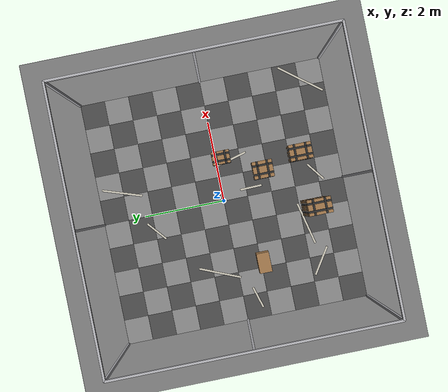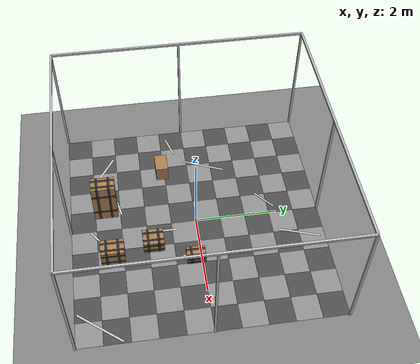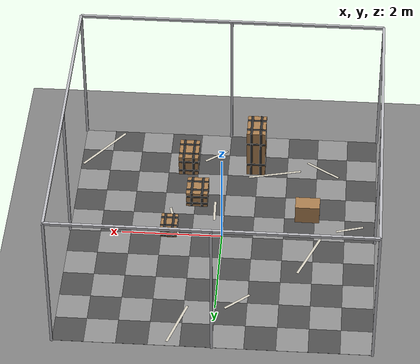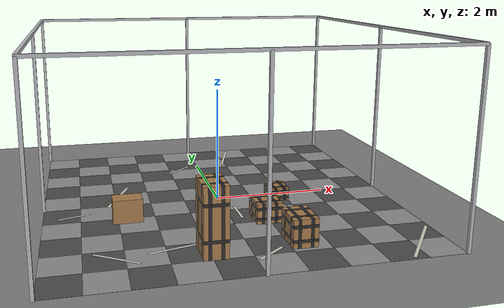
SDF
<sdf version="1.9">
 <world name="ecps295_lowbox_s33_monitor">
  <model name="ground_plane">
   <static>true</static>
   <link name="link">
    <collision name="collision">
     <geometry><plane><normal>0 0 1</normal><size>50 50</size></plane></geometry>
    </collision>
    <visual name="visual">
     <geometry><plane><normal>0 0 1</normal><size>50 50</size></plane></geometry>
     <material><ambient>0.5 0.5 0.5 1</ambient><diffuse>0.5 0.5 0.5 1</diffuse></material>
    </visual>
   </link>
  </model>
  <model name="eva_mat">
   <static>true</static>
   <link name="link">
    <visual name="t0_0">
     <pose>-2.745 -2.745 0.001 0 0 0</pose>
     <geometry><box><size>0.61 0.61 0.002</size></box></geometry>
     <material><ambient>0.3 0.3 0.3 1</ambient><diffuse>0.3 0.3 0.3 1</diffuse></material>
    </visual>
    <visual name="t0_1">
     <pose>-2.745 -2.135 0.001 0 0 0</pose>
     <geometry><box><size>0.61 0.61 0.002</size></box></geometry>
     <material><ambient>0.55 0.55 0.55 1</ambient><diffuse>0.55 0.55 0.55 1</diffuse></material>
    </visual>
    <visual name="t0_2">
     <pose>-2.745 -1.525 0.001 0 0 0</pose>
     <geometry><box><size>0.61 0.61 0.002</size></box></geometry>
     <material><ambient>0.3 0.3 0.3 1</ambient><diffuse>0.3 0.3 0.3 1</diffuse></material>
    </visual>
    <visual name="t0_3">
     <pose>-2.745 -0.915 0.001 0 0 0</pose>
     <geometry><box><size>0.61 0.61 0.002</size></box></geometry>
     <material><ambient>0.55 0.55 0.55 1</ambient><diffuse>0.55 0.55 0.55 1</diffuse></material>
    </visual>
    <visual name="t0_4">
     <pose>-2.745 -0.305 0.001 0 0 0</pose>
     <geometry><box><size>0.61 0.61 0.002</size></box></geometry>
     <material><ambient>0.3 0.3 0.3 1</ambient><diffuse>0.3 0.3 0.3 1</diffuse></material>
    </visual>
    <visual name="t0_5">
     <pose>-2.745 0.305 0.001 0 0 0</pose>
     <geometry><box><size>0.61 0.61 0.002</size></box></geometry>
     <material><ambient>0.55 0.55 0.55 1</ambient><diffuse>0.55 0.55 0.55 1</diffuse></material>
    </visual>
    <visual name="t0_6">
     <pose>-2.745 0.915 0.001 0 0 0</pose>
     <geometry><box><size>0.61 0.61 0.002</size></box></geometry>
     <material><ambient>0.3 0.3 0.3 1</ambient><diffuse>0.3 0.3 0.3 1</diffuse></material>
    </visual>
    <visual name="t0_7">
     <pose>-2.745 1.525 0.001 0 0 0</pose>
     <geometry><box><size>0.61 0.61 0.002</size></box></geometry>
     <material><ambient>0.55 0.55 0.55 1</ambient><diffuse>0.55 0.55 0.55 1</diffuse></material>
    </visual>
    <visual name="t0_8">
     <pose>-2.745 2.135 0.001 0 0 0</pose>
     <geometry><box><size>0.61 0.61 0.002</size></box></geometry>
     <material><ambient>0.3 0.3 0.3 1</ambient><diffuse>0.3 0.3 0.3 1</diffuse></material>
    </visual>
    <visual name="t0_9">
     <pose>-2.745 2.745 0.001 0 0 0</pose>
     <geometry><box><size>0.61 0.61 0.002</size></box></geometry>
     <material><ambient>0.55 0.55 0.55 1</ambient><diffuse>0.55 0.55 0.55 1</diffuse></material>
    </visual>
    <visual name="t1_0">
     <pose>-2.135 -2.745 0.001 0 0 0</pose>
     <geometry><box><size>0.61 0.61 0.002</size></box></geometry>
     <material><ambient>0.55 0.55 0.55 1</ambient><diffuse>0.55 0.55 0.55 1</diffuse></material>
    </visual>
    <visual name="t1_1">
     <pose>-2.135 -2.135 0.001 0 0 0</pose>
     <geometry><box><size>0.61 0.61 0.002</size></box></geometry>
     <material><ambient>0.3 0.3 0.3 1</ambient><diffuse>0.3 0.3 0.3 1</diffuse></material>
    </visual>
    <visual name="t1_2">
     <pose>-2.135 -1.525 0.001 0 0 0</pose>
     <geometry><box><size>0.61 0.61 0.002</size></box></geometry>
     <material><ambient>0.55 0.55 0.55 1</ambient><diffuse>0.55 0.55 0.55 1</diffuse></material>
    </visual>
    <visual name="t1_3">
     <pose>-2.135 -0.915 0.001 0 0 0</pose>
     <geometry><box><size>0.61 0.61 0.002</size></box></geometry>
     <material><ambient>0.3 0.3 0.3 1</ambient><diffuse>0.3 0.3 0.3 1</diffuse></material>
    </visual>
    <visual name="t1_4">
     <pose>-2.135 -0.305 0.001 0 0 0</pose>
     <geometry><box><size>0.61 0.61 0.002</size></box></geometry>
     <material><ambient>0.55 0.55 0.55 1</ambient><diffuse>0.55 0.55 0.55 1</diffuse></material>
    </visual>
    <visual name="t1_5">
     <pose>-2.135 0.305 0.001 0 0 0</pose>
     <geometry><box><size>0.61 0.61 0.002</size></box></geometry>
     <material><ambient>0.3 0.3 0.3 1</ambient><diffuse>0.3 0.3 0.3 1</diffuse></material>
    </visual>
    <visual name="t1_6">
     <pose>-2.135 0.915 0.001 0 0 0</pose>
     <geometry><box><size>0.61 0.61 0.002</size></box></geometry>
     <material><ambient>0.55 0.55 0.55 1</ambient><diffuse>0.55 0.55 0.55 1</diffuse></material>
    </visual>
    <visual name="t1_7">
     <pose>-2.135 1.525 0.001 0 0 0</pose>
     <geometry><box><size>0.61 0.61 0.002</size></box></geometry>
     <material><ambient>0.3 0.3 0.3 1</ambient><diffuse>0.3 0.3 0.3 1</diffuse></material>
    </visual>
    <visual name="t1_8">
     <pose>-2.135 2.135 0.001 0 0 0</pose>
     <geometry><box><size>0.61 0.61 0.002</size></box></geometry>
     <material><ambient>0.55 0.55 0.55 1</ambient><diffuse>0.55 0.55 0.55 1</diffuse></material>
    </visual>
    <visual name="t1_9">
     <pose>-2.135 2.745 0.001 0 0 0</pose>
     <geometry><box><size>0.61 0.61 0.002</size></box></geometry>
     <material><ambient>0.3 0.3 0.3 1</ambient><diffuse>0.3 0.3 0.3 1</diffuse></material>
    </visual>
    <visual name="t2_0">
     <pose>-1.525 -2.745 0.001 0 0 0</pose>
     <geometry><box><size>0.61 0.61 0.002</size></box></geometry>
     <material><ambient>0.3 0.3 0.3 1</ambient><diffuse>0.3 0.3 0.3 1</diffuse></material>
    </visual>
    <visual name="t2_1">
     <pose>-1.525 -2.135 0.001 0 0 0</pose>
     <geometry><box><size>0.61 0.61 0.002</size></box></geometry>
     <material><ambient>0.55 0.55 0.55 1</ambient><diffuse>0.55 0.55 0.55 1</diffuse></material>
    </visual>
    <visual name="t2_2">
     <pose>-1.525 -1.525 0.001 0 0 0</pose>
     <geometry><box><size>0.61 0.61 0.002</size></box></geometry>
     <material><ambient>0.3 0.3 0.3 1</ambient><diffuse>0.3 0.3 0.3 1</diffuse></material>
    </visual>
    <visual name="t2_3">
     <pose>-1.525 -0.915 0.001 0 0 0</pose>
     <geometry><box><size>0.61 0.61 0.002</size></box></geometry>
     <material><ambient>0.55 0.55 0.55 1</ambient><diffuse>0.55 0.55 0.55 1</diffuse></material>
    </visual>
    <visual name="t2_4">
     <pose>-1.525 -0.305 0.001 0 0 0</pose>
     <geometry><box><size>0.61 0.61 0.002</size></box></geometry>
     <material><ambient>0.3 0.3 0.3 1</ambient><diffuse>0.3 0.3 0.3 1</diffuse></material>
    </visual>
    <visual name="t2_5">
     <pose>-1.525 0.305 0.001 0 0 0</pose>
     <geometry><box><size>0.61 0.61 0.002</size></box></geometry>
     <material><ambient>0.55 0.55 0.55 1</ambient><diffuse>0.55 0.55 0.55 1</diffuse></material>
    </visual>
    <visual name="t2_6">
     <pose>-1.525 0.915 0.001 0 0 0</pose>
     <geometry><box><size>0.61 0.61 0.002</size></box></geometry>
     <material><ambient>0.3 0.3 0.3 1</ambient><diffuse>0.3 0.3 0.3 1</diffuse></material>
    </visual>
    <visual name="t2_7">
     <pose>-1.525 1.525 0.001 0 0 0</pose>
     <geometry><box><size>0.61 0.61 0.002</size></box></geometry>
     <material><ambient>0.55 0.55 0.55 1</ambient><diffuse>0.55 0.55 0.55 1</diffuse></material>
    </visual>
    <visual name="t2_8">
     <pose>-1.525 2.135 0.001 0 0 0</pose>
     <geometry><box><size>0.61 0.61 0.002</size></box></geometry>
     <material><ambient>0.3 0.3 0.3 1</ambient><diffuse>0.3 0.3 0.3 1</diffuse></material>
    </visual>
    <visual name="t2_9">
     <pose>-1.525 2.745 0.001 0 0 0</pose>
     <geometry><box><size>0.61 0.61 0.002</size></box></geometry>
     <material><ambient>0.55 0.55 0.55 1</ambient><diffuse>0.55 0.55 0.55 1</diffuse></material>
    </visual>
    <visual name="t3_0">
     <pose>-0.915 -2.745 0.001 0 0 0</pose>
     <geometry><box><size>0.61 0.61 0.002</size></box></geometry>
     <material><ambient>0.55 0.55 0.55 1</ambient><diffuse>0.55 0.55 0.55 1</diffuse></material>
    </visual>
    <visual name="t3_1">
     <pose>-0.915 -2.135 0.001 0 0 0</pose>
     <geometry><box><size>0.61 0.61 0.002</size></box></geometry>
     <material><ambient>0.3 0.3 0.3 1</ambient><diffuse>0.3 0.3 0.3 1</diffuse></material>
    </visual>
    <visual name="t3_2">
     <pose>-0.915 -1.525 0.001 0 0 0</pose>
     <geometry><box><size>0.61 0.61 0.002</size></box></geometry>
     <material><ambient>0.55 0.55 0.55 1</ambient><diffuse>0.55 0.55 0.55 1</diffuse></material>
    </visual>
    <visual name="t3_3">
     <pose>-0.915 -0.915 0.001 0 0 0</pose>
     <geometry><box><size>0.61 0.61 0.002</size></box></geometry>
     <material><ambient>0.3 0.3 0.3 1</ambient><diffuse>0.3 0.3 0.3 1</diffuse></material>
    </visual>
    <visual name="t3_4">
     <pose>-0.915 -0.305 0.001 0 0 0</pose>
     <geometry><box><size>0.61 0.61 0.002</size></box></geometry>
     <material><ambient>0.55 0.55 0.55 1</ambient><diffuse>0.55 0.55 0.55 1</diffuse></material>
    </visual>
    <visual name="t3_5">
     <pose>-0.915 0.305 0.001 0 0 0</pose>
     <geometry><box><size>0.61 0.61 0.002</size></box></geometry>
     <material><ambient>0.3 0.3 0.3 1</ambient><diffuse>0.3 0.3 0.3 1</diffuse></material>
    </visual>
    <visual name="t3_6">
     <pose>-0.915 0.915 0.001 0 0 0</pose>
     <geometry><box><size>0.61 0.61 0.002</size></box></geometry>
     <material><ambient>0.55 0.55 0.55 1</ambient><diffuse>0.55 0.55 0.55 1</diffuse></material>
    </visual>
    <visual name="t3_7">
     <pose>-0.915 1.525 0.001 0 0 0</pose>
     <geometry><box><size>0.61 0.61 0.002</size></box></geometry>
     <material><ambient>0.3 0.3 0.3 1</ambient><diffuse>0.3 0.3 0.3 1</diffuse></material>
    </visual>
    <visual name="t3_8">
     <pose>-0.915 2.135 0.001 0 0 0</pose>
     <geometry><box><size>0.61 0.61 0.002</size></box></geometry>
     <material><ambient>0.55 0.55 0.55 1</ambient><diffuse>0.55 0.55 0.55 1</diffuse></material>
    </visual>
    <visual name="t3_9">
     <pose>-0.915 2.745 0.001 0 0 0</pose>
     <geometry><box><size>0.61 0.61 0.002</size></box></geometry>
     <material><ambient>0.3 0.3 0.3 1</ambient><diffuse>0.3 0.3 0.3 1</diffuse></material>
    </visual>
    <visual name="t4_0">
     <pose>-0.305 -2.745 0.001 0 0 0</pose>
     <geometry><box><size>0.61 0.61 0.002</size></box></geometry>
     <material><ambient>0.3 0.3 0.3 1</ambient><diffuse>0.3 0.3 0.3 1</diffuse></material>
    </visual>
    <visual name="t4_1">
     <pose>-0.305 -2.135 0.001 0 0 0</pose>
     <geometry><box><size>0.61 0.61 0.002</size></box></geometry>
     <material><ambient>0.55 0.55 0.55 1</ambient><diffuse>0.55 0.55 0.55 1</diffuse></material>
    </visual>
    <visual name="t4_2">
     <pose>-0.305 -1.525 0.001 0 0 0</pose>
     <geometry><box><size>0.61 0.61 0.002</size></box></geometry>
     <material><ambient>0.3 0.3 0.3 1</ambient><diffuse>0.3 0.3 0.3 1</diffuse></material>
    </visual>
    <visual name="t4_3">
     <pose>-0.305 -0.915 0.001 0 0 0</pose>
     <geometry><box><size>0.61 0.61 0.002</size></box></geometry>
     <material><ambient>0.55 0.55 0.55 1</ambient><diffuse>0.55 0.55 0.55 1</diffuse></material>
    </visual>
    <visual name="t4_4">
     <pose>-0.305 -0.305 0.001 0 0 0</pose>
     <geometry><box><size>0.61 0.61 0.002</size></box></geometry>
     <material><ambient>0.3 0.3 0.3 1</ambient><diffuse>0.3 0.3 0.3 1</diffuse></material>
    </visual>
    <visual name="t4_5">
     <pose>-0.305 0.305 0.001 0 0 0</pose>
     <geometry><box><size>0.61 0.61 0.002</size></box></geometry>
     <material><ambient>0.55 0.55 0.55 1</ambient><diffuse>0.55 0.55 0.55 1</diffuse></material>
    </visual>
    <visual name="t4_6">
     <pose>-0.305 0.915 0.001 0 0 0</pose>
     <geometry><box><size>0.61 0.61 0.002</size></box></geometry>
     <material><ambient>0.3 0.3 0.3 1</ambient><diffuse>0.3 0.3 0.3 1</diffuse></material>
    </visual>
    <visual name="t4_7">
     <pose>-0.305 1.525 0.001 0 0 0</pose>
     <geometry><box><size>0.61 0.61 0.002</size></box></geometry>
     <material><ambient>0.55 0.55 0.55 1</ambient><diffuse>0.55 0.55 0.55 1</diffuse></material>
    </visual>
    <visual name="t4_8">
     <pose>-0.305 2.135 0.001 0 0 0</pose>
     <geometry><box><size>0.61 0.61 0.002</size></box></geometry>
     <material><ambient>0.3 0.3 0.3 1</ambient><diffuse>0.3 0.3 0.3 1</diffuse></material>
    </visual>
    <visual name="t4_9">
     <pose>-0.305 2.745 0.001 0 0 0</pose>
     <geometry><box><size>0.61 0.61 0.002</size></box></geometry>
     <material><ambient>0.55 0.55 0.55 1</ambient><diffuse>0.55 0.55 0.55 1</diffuse></material>
    </visual>
    <visual name="t5_0">
     <pose>0.305 -2.745 0.001 0 0 0</pose>
     <geometry><box><size>0.61 0.61 0.002</size></box></geometry>
     <material><ambient>0.55 0.55 0.55 1</ambient><diffuse>0.55 0.55 0.55 1</diffuse></material>
    </visual>
    <visual name="t5_1">
     <pose>0.305 -2.135 0.001 0 0 0</pose>
     <geometry><box><size>0.61 0.61 0.002</size></box></geometry>
     <material><ambient>0.3 0.3 0.3 1</ambient><diffuse>0.3 0.3 0.3 1</diffuse></material>
    </visual>
    <visual name="t5_2">
     <pose>0.305 -1.525 0.001 0 0 0</pose>
     <geometry><box><size>0.61 0.61 0.002</size></box></geometry>
     <material><ambient>0.55 0.55 0.55 1</ambient><diffuse>0.55 0.55 0.55 1</diffuse></material>
    </visual>
    <visual name="t5_3">
     <pose>0.305 -0.915 0.001 0 0 0</pose>
     <geometry><box><size>0.61 0.61 0.002</size></box></geometry>
     <material><ambient>0.3 0.3 0.3 1</ambient><diffuse>0.3 0.3 0.3 1</diffuse></material>
    </visual>
    <visual name="t5_4">
     <pose>0.305 -0.305 0.001 0 0 0</pose>
     <geometry><box><size>0.61 0.61 0.002</size></box></geometry>
     <material><ambient>0.55 0.55 0.55 1</ambient><diffuse>0.55 0.55 0.55 1</diffuse></material>
    </visual>
    <visual name="t5_5">
     <pose>0.305 0.305 0.001 0 0 0</pose>
     <geometry><box><size>0.61 0.61 0.002</size></box></geometry>
     <material><ambient>0.3 0.3 0.3 1</ambient><diffuse>0.3 0.3 0.3 1</diffuse></material>
    </visual>
    <visual name="t5_6">
     <pose>0.305 0.915 0.001 0 0 0</pose>
     <geometry><box><size>0.61 0.61 0.002</size></box></geometry>
     <material><ambient>0.55 0.55 0.55 1</ambient><diffuse>0.55 0.55 0.55 1</diffuse></material>
    </visual>
    <visual name="t5_7">
     <pose>0.305 1.525 0.001 0 0 0</pose>
     <geometry><box><size>0.61 0.61 0.002</size></box></geometry>
     <material><ambient>0.3 0.3 0.3 1</ambient><diffuse>0.3 0.3 0.3 1</diffuse></material>
    </visual>
    <visual name="t5_8">
     <pose>0.305 2.135 0.001 0 0 0</pose>
     <geometry><box><size>0.61 0.61 0.002</size></box></geometry>
     <material><ambient>0.55 0.55 0.55 1</ambient><diffuse>0.55 0.55 0.55 1</diffuse></material>
    </visual>
    <visual name="t5_9">
     <pose>0.305 2.745 0.001 0 0 0</pose>
     <geometry><box><size>0.61 0.61 0.002</size></box></geometry>
     <material><ambient>0.3 0.3 0.3 1</ambient><diffuse>0.3 0.3 0.3 1</diffuse></material>
    </visual>
    <visual name="t6_0">
     <pose>0.915 -2.745 0.001 0 0 0</pose>
     <geometry><box><size>0.61 0.61 0.002</size></box></geometry>
     <material><ambient>0.3 0.3 0.3 1</ambient><diffuse>0.3 0.3 0.3 1</diffuse></material>
    </visual>
    <visual name="t6_1">
     <pose>0.915 -2.135 0.001 0 0 0</pose>
     <geometry><box><size>0.61 0.61 0.002</size></box></geometry>
     <material><ambient>0.55 0.55 0.55 1</ambient><diffuse>0.55 0.55 0.55 1</diffuse></material>
    </visual>
    <visual name="t6_2">
     <pose>0.915 -1.525 0.001 0 0 0</pose>
     <geometry><box><size>0.61 0.61 0.002</size></box></geometry>
     <material><ambient>0.3 0.3 0.3 1</ambient><diffuse>0.3 0.3 0.3 1</diffuse></material>
    </visual>
    <visual name="t6_3">
     <pose>0.915 -0.915 0.001 0 0 0</pose>
     <geometry><box><size>0.61 0.61 0.002</size></box></geometry>
     <material><ambient>0.55 0.55 0.55 1</ambient><diffuse>0.55 0.55 0.55 1</diffuse></material>
    </visual>
    <visual name="t6_4">
     <pose>0.915 -0.305 0.001 0 0 0</pose>
     <geometry><box><size>0.61 0.61 0.002</size></box></geometry>
     <material><ambient>0.3 0.3 0.3 1</ambient><diffuse>0.3 0.3 0.3 1</diffuse></material>
    </visual>
    <visual name="t6_5">
     <pose>0.915 0.305 0.001 0 0 0</pose>
     <geometry><box><size>0.61 0.61 0.002</size></box></geometry>
     <material><ambient>0.55 0.55 0.55 1</ambient><diffuse>0.55 0.55 0.55 1</diffuse></material>
    </visual>
    <visual name="t6_6">
     <pose>0.915 0.915 0.001 0 0 0</pose>
     <geometry><box><size>0.61 0.61 0.002</size></box></geometry>
     <material><ambient>0.3 0.3 0.3 1</ambient><diffuse>0.3 0.3 0.3 1</diffuse></material>
    </visual>
    <visual name="t6_7">
     <pose>0.915 1.525 0.001 0 0 0</pose>
     <geometry><box><size>0.61 0.61 0.002</size></box></geometry>
     <material><ambient>0.55 0.55 0.55 1</ambient><diffuse>0.55 0.55 0.55 1</diffuse></material>
    </visual>
    <visual name="t6_8">
     <pose>0.915 2.135 0.001 0 0 0</pose>
     <geometry><box><size>0.61 0.61 0.002</size></box></geometry>
     <material><ambient>0.3 0.3 0.3 1</ambient><diffuse>0.3 0.3 0.3 1</diffuse></material>
    </visual>
    <visual name="t6_9">
     <pose>0.915 2.745 0.001 0 0 0</pose>
     <geometry><box><size>0.61 0.61 0.002</size></box></geometry>
     <material><ambient>0.55 0.55 0.55 1</ambient><diffuse>0.55 0.55 0.55 1</diffuse></material>
    </visual>
    <visual name="t7_0">
     <pose>1.525 -2.745 0.001 0 0 0</pose>
     <geometry><box><size>0.61 0.61 0.002</size></box></geometry>
     <material><ambient>0.55 0.55 0.55 1</ambient><diffuse>0.55 0.55 0.55 1</diffuse></material>
    </visual>
    <visual name="t7_1">
     <pose>1.525 -2.135 0.001 0 0 0</pose>
     <geometry><box><size>0.61 0.61 0.002</size></box></geometry>
     <material><ambient>0.3 0.3 0.3 1</ambient><diffuse>0.3 0.3 0.3 1</diffuse></material>
    </visual>
    <visual name="t7_2">
     <pose>1.525 -1.525 0.001 0 0 0</pose>
     <geometry><box><size>0.61 0.61 0.002</size></box></geometry>
     <material><ambient>0.55 0.55 0.55 1</ambient><diffuse>0.55 0.55 0.55 1</diffuse></material>
    </visual>
    <visual name="t7_3">
     <pose>1.525 -0.915 0.001 0 0 0</pose>
     <geometry><box><size>0.61 0.61 0.002</size></box></geometry>
     <material><ambient>0.3 0.3 0.3 1</ambient><diffuse>0.3 0.3 0.3 1</diffuse></material>
    </visual>
    <visual name="t7_4">
     <pose>1.525 -0.305 0.001 0 0 0</pose>
     <geometry><box><size>0.61 0.61 0.002</size></box></geometry>
     <material><ambient>0.55 0.55 0.55 1</ambient><diffuse>0.55 0.55 0.55 1</diffuse></material>
    </visual>
    <visual name="t7_5">
     <pose>1.525 0.305 0.001 0 0 0</pose>
     <geometry><box><size>0.61 0.61 0.002</size></box></geometry>
     <material><ambient>0.3 0.3 0.3 1</ambient><diffuse>0.3 0.3 0.3 1</diffuse></material>
    </visual>
    <visual name="t7_6">
     <pose>1.525 0.915 0.001 0 0 0</pose>
     <geometry><box><size>0.61 0.61 0.002</size></box></geometry>
     <material><ambient>0.55 0.55 0.55 1</ambient><diffuse>0.55 0.55 0.55 1</diffuse></material>
    </visual>
    <visual name="t7_7">
     <pose>1.525 1.525 0.001 0 0 0</pose>
     <geometry><box><size>0.61 0.61 0.002</size></box></geometry>
     <material><ambient>0.3 0.3 0.3 1</ambient><diffuse>0.3 0.3 0.3 1</diffuse></material>
    </visual>
    <visual name="t7_8">
     <pose>1.525 2.135 0.001 0 0 0</pose>
     <geometry><box><size>0.61 0.61 0.002</size></box></geometry>
     <material><ambient>0.55 0.55 0.55 1</ambient><diffuse>0.55 0.55 0.55 1</diffuse></material>
    </visual>
    <visual name="t7_9">
     <pose>1.525 2.745 0.001 0 0 0</pose>
     <geometry><box><size>0.61 0.61 0.002</size></box></geometry>
     <material><ambient>0.3 0.3 0.3 1</ambient><diffuse>0.3 0.3 0.3 1</diffuse></material>
    </visual>
    <visual name="t8_0">
     <pose>2.135 -2.745 0.001 0 0 0</pose>
     <geometry><box><size>0.61 0.61 0.002</size></box></geometry>
     <material><ambient>0.3 0.3 0.3 1</ambient><diffuse>0.3 0.3 0.3 1</diffuse></material>
    </visual>
    <visual name="t8_1">
     <pose>2.135 -2.135 0.001 0 0 0</pose>
     <geometry><box><size>0.61 0.61 0.002</size></box></geometry>
     <material><ambient>0.55 0.55 0.55 1</ambient><diffuse>0.55 0.55 0.55 1</diffuse></material>
    </visual>
    <visual name="t8_2">
     <pose>2.135 -1.525 0.001 0 0 0</pose>
     <geometry><box><size>0.61 0.61 0.002</size></box></geometry>
     <material><ambient>0.3 0.3 0.3 1</ambient><diffuse>0.3 0.3 0.3 1</diffuse></material>
    </visual>
    <visual name="t8_3">
     <pose>2.135 -0.915 0.001 0 0 0</pose>
     <geometry><box><size>0.61 0.61 0.002</size></box></geometry>
     <material><ambient>0.55 0.55 0.55 1</ambient><diffuse>0.55 0.55 0.55 1</diffuse></material>
    </visual>
    <visual name="t8_4">
     <pose>2.135 -0.305 0.001 0 0 0</pose>
     <geometry><box><size>0.61 0.61 0.002</size></box></geometry>
     <material><ambient>0.3 0.3 0.3 1</ambient><diffuse>0.3 0.3 0.3 1</diffuse></material>
    </visual>
    <visual name="t8_5">
     <pose>2.135 0.305 0.001 0 0 0</pose>
     <geometry><box><size>0.61 0.61 0.002</size></box></geometry>
     <material><ambient>0.55 0.55 0.55 1</ambient><diffuse>0.55 0.55 0.55 1</diffuse></material>
    </visual>
    <visual name="t8_6">
     <pose>2.135 0.915 0.001 0 0 0</pose>
     <geometry><box><size>0.61 0.61 0.002</size></box></geometry>
     <material><ambient>0.3 0.3 0.3 1</ambient><diffuse>0.3 0.3 0.3 1</diffuse></material>
    </visual>
    <visual name="t8_7">
     <pose>2.135 1.525 0.001 0 0 0</pose>
     <geometry><box><size>0.61 0.61 0.002</size></box></geometry>
     <material><ambient>0.55 0.55 0.55 1</ambient><diffuse>0.55 0.55 0.55 1</diffuse></material>
    </visual>
    <visual name="t8_8">
     <pose>2.135 2.135 0.001 0 0 0</pose>
     <geometry><box><size>0.61 0.61 0.002</size></box></geometry>
     <material><ambient>0.3 0.3 0.3 1</ambient><diffuse>0.3 0.3 0.3 1</diffuse></material>
    </visual>
    <visual name="t8_9">
     <pose>2.135 2.745 0.001 0 0 0</pose>
     <geometry><box><size>0.61 0.61 0.002</size></box></geometry>
     <material><ambient>0.55 0.55 0.55 1</ambient><diffuse>0.55 0.55 0.55 1</diffuse></material>
    </visual>
    <visual name="t9_0">
     <pose>2.745 -2.745 0.001 0 0 0</pose>
     <geometry><box><size>0.61 0.61 0.002</size></box></geometry>
     <material><ambient>0.55 0.55 0.55 1</ambient><diffuse>0.55 0.55 0.55 1</diffuse></material>
    </visual>
    <visual name="t9_1">
     <pose>2.745 -2.135 0.001 0 0 0</pose>
     <geometry><box><size>0.61 0.61 0.002</size></box></geometry>
     <material><ambient>0.3 0.3 0.3 1</ambient><diffuse>0.3 0.3 0.3 1</diffuse></material>
    </visual>
    <visual name="t9_2">
     <pose>2.745 -1.525 0.001 0 0 0</pose>
     <geometry><box><size>0.61 0.61 0.002</size></box></geometry>
     <material><ambient>0.55 0.55 0.55 1</ambient><diffuse>0.55 0.55 0.55 1</diffuse></material>
    </visual>
    <visual name="t9_3">
     <pose>2.745 -0.915 0.001 0 0 0</pose>
     <geometry><box><size>0.61 0.61 0.002</size></box></geometry>
     <material><ambient>0.3 0.3 0.3 1</ambient><diffuse>0.3 0.3 0.3 1</diffuse></material>
    </visual>
    <visual name="t9_4">
     <pose>2.745 -0.305 0.001 0 0 0</pose>
     <geometry><box><size>0.61 0.61 0.002</size></box></geometry>
     <material><ambient>0.55 0.55 0.55 1</ambient><diffuse>0.55 0.55 0.55 1</diffuse></material>
    </visual>
    <visual name="t9_5">
     <pose>2.745 0.305 0.001 0 0 0</pose>
     <geometry><box><size>0.61 0.61 0.002</size></box></geometry>
     <material><ambient>0.3 0.3 0.3 1</ambient><diffuse>0.3 0.3 0.3 1</diffuse></material>
    </visual>
    <visual name="t9_6">
     <pose>2.745 0.915 0.001 0 0 0</pose>
     <geometry><box><size>0.61 0.61 0.002</size></box></geometry>
     <material><ambient>0.55 0.55 0.55 1</ambient><diffuse>0.55 0.55 0.55 1</diffuse></material>
    </visual>
    <visual name="t9_7">
     <pose>2.745 1.525 0.001 0 0 0</pose>
     <geometry><box><size>0.61 0.61 0.002</size></box></geometry>
     <material><ambient>0.3 0.3 0.3 1</ambient><diffuse>0.3 0.3 0.3 1</diffuse></material>
    </visual>
    <visual name="t9_8">
     <pose>2.745 2.135 0.001 0 0 0</pose>
     <geometry><box><size>0.61 0.61 0.002</size></box></geometry>
     <material><ambient>0.55 0.55 0.55 1</ambient><diffuse>0.55 0.55 0.55 1</diffuse></material>
    </visual>
    <visual name="t9_9">
     <pose>2.745 2.745 0.001 0 0 0</pose>
     <geometry><box><size>0.61 0.61 0.002</size></box></geometry>
     <material><ambient>0.3 0.3 0.3 1</ambient><diffuse>0.3 0.3 0.3 1</diffuse></material>
    </visual>
   </link>
  </model>
  <model name="floor_tape">
   <static>true</static>
   <link name="link">
    <visual name="tape0">
     <pose>-0.969 -1.920 0.003 0 0 0.2276</pose>
     <geometry><box><size>1.086 0.050 0.001</size></box></geometry>
     <material><ambient>0.82 0.80 0.74 1</ambient><diffuse>0.82 0.80 0.74 1</diffuse></material>
    </visual>
    <visual name="tape1">
     <pose>0.197 -0.739 0.003 0 0 1.5942</pose>
     <geometry><box><size>0.552 0.050 0.001</size></box></geometry>
     <material><ambient>0.82 0.80 0.74 1</ambient><diffuse>0.82 0.80 0.74 1</diffuse></material>
    </visual>
    <visual name="tape2">
     <pose>-2.544 -0.365 0.003 0 0 0.2850</pose>
     <geometry><box><size>0.563 0.050 0.001</size></box></geometry>
     <material><ambient>0.82 0.80 0.74 1</ambient><diffuse>0.82 0.80 0.74 1</diffuse></material>
    </visual>
    <visual name="tape3">
     <pose>-0.415 1.798 0.003 0 0 0.7013</pose>
     <geometry><box><size>0.611 0.050 0.001</size></box></geometry>
     <material><ambient>0.82 0.80 0.74 1</ambient><diffuse>0.82 0.80 0.74 1</diffuse></material>
    </visual>
    <visual name="tape4">
     <pose>0.701 2.462 0.003 0 0 1.2462</pose>
     <geometry><box><size>1.019 0.050 0.001</size></box></geometry>
     <material><ambient>0.82 0.80 0.74 1</ambient><diffuse>0.82 0.80 0.74 1</diffuse></material>
    </visual>
    <visual name="tape5">
     <pose>2.619 -2.494 0.003 0 0 0.9098</pose>
     <geometry><box><size>1.273 0.050 0.001</size></box></geometry>
     <material><ambient>0.82 0.80 0.74 1</ambient><diffuse>0.82 0.80 0.74 1</diffuse></material>
    </visual>
    <visual name="tape6">
     <pose>-1.957 -2.102 0.003 0 0 2.5639</pose>
     <geometry><box><size>0.778 0.050 0.001</size></box></geometry>
     <material><ambient>0.82 0.80 0.74 1</ambient><diffuse>0.82 0.80 0.74 1</diffuse></material>
    </visual>
    <visual name="tape7">
     <pose>-1.756 0.449 0.003 0 0 1.1699</pose>
     <geometry><box><size>1.075 0.050 0.001</size></box></geometry>
     <material><ambient>0.82 0.80 0.74 1</ambient><diffuse>0.82 0.80 0.74 1</diffuse></material>
    </visual>
    <visual name="tape8">
     <pose>0.263 -2.405 0.003 0 0 0.6470</pose>
     <geometry><box><size>0.554 0.050 0.001</size></box></geometry>
     <material><ambient>0.82 0.80 0.74 1</ambient><diffuse>0.82 0.80 0.74 1</diffuse></material>
    </visual>
    <visual name="tape9">
     <pose>0.992 -0.398 0.003 0 0 1.8396</pose>
     <geometry><box><size>0.783 0.050 0.001</size></box></geometry>
     <material><ambient>0.82 0.80 0.74 1</ambient><diffuse>0.82 0.80 0.74 1</diffuse></material>
    </visual>
   </link>
  </model>
  <model name="cage_frame">
   <static>true</static>
   <link name="link">
    <visual name="post0_0">
     <pose>-3.050 -3.050 1.525 0 0 0.0000</pose>
     <geometry><box><size>0.050 0.050 3.050</size></box></geometry>
     <material><ambient>0.72 0.72 0.74 1</ambient><diffuse>0.72 0.72 0.74 1</diffuse></material>
    </visual>
    <visual name="post0_1">
     <pose>-3.050 0.000 1.525 0 0 0.0000</pose>
     <geometry><box><size>0.050 0.050 3.050</size></box></geometry>
     <material><ambient>0.72 0.72 0.74 1</ambient><diffuse>0.72 0.72 0.74 1</diffuse></material>
    </visual>
    <visual name="post0_2">
     <pose>-3.050 3.050 1.525 0 0 0.0000</pose>
     <geometry><box><size>0.050 0.050 3.050</size></box></geometry>
     <material><ambient>0.72 0.72 0.74 1</ambient><diffuse>0.72 0.72 0.74 1</diffuse></material>
    </visual>
    <visual name="post1_0">
     <pose>0.000 -3.050 1.525 0 0 0.0000</pose>
     <geometry><box><size>0.050 0.050 3.050</size></box></geometry>
     <material><ambient>0.72 0.72 0.74 1</ambient><diffuse>0.72 0.72 0.74 1</diffuse></material>
    </visual>
    <visual name="post1_2">
     <pose>0.000 3.050 1.525 0 0 0.0000</pose>
     <geometry><box><size>0.050 0.050 3.050</size></box></geometry>
     <material><ambient>0.72 0.72 0.74 1</ambient><diffuse>0.72 0.72 0.74 1</diffuse></material>
    </visual>
    <visual name="post2_0">
     <pose>3.050 -3.050 1.525 0 0 0.0000</pose>
     <geometry><box><size>0.050 0.050 3.050</size></box></geometry>
     <material><ambient>0.72 0.72 0.74 1</ambient><diffuse>0.72 0.72 0.74 1</diffuse></material>
    </visual>
    <visual name="post2_1">
     <pose>3.050 0.000 1.525 0 0 0.0000</pose>
     <geometry><box><size>0.050 0.050 3.050</size></box></geometry>
     <material><ambient>0.72 0.72 0.74 1</ambient><diffuse>0.72 0.72 0.74 1</diffuse></material>
    </visual>
    <visual name="post2_2">
     <pose>3.050 3.050 1.525 0 0 0.0000</pose>
     <geometry><box><size>0.050 0.050 3.050</size></box></geometry>
     <material><ambient>0.72 0.72 0.74 1</ambient><diffuse>0.72 0.72 0.74 1</diffuse></material>
    </visual>
    <visual name="railx0">
     <pose>0.000 -3.050 3.050 0 0 0.0000</pose>
     <geometry><box><size>6.100 0.050 0.050</size></box></geometry>
     <material><ambient>0.72 0.72 0.74 1</ambient><diffuse>0.72 0.72 0.74 1</diffuse></material>
    </visual>
    <visual name="raily0">
     <pose>-3.050 0.000 3.050 0 0 0.0000</pose>
     <geometry><box><size>0.050 6.100 0.050</size></box></geometry>
     <material><ambient>0.72 0.72 0.74 1</ambient><diffuse>0.72 0.72 0.74 1</diffuse></material>
    </visual>
    <visual name="railx1">
     <pose>0.000 3.050 3.050 0 0 0.0000</pose>
     <geometry><box><size>6.100 0.050 0.050</size></box></geometry>
     <material><ambient>0.72 0.72 0.74 1</ambient><diffuse>0.72 0.72 0.74 1</diffuse></material>
    </visual>
    <visual name="raily1">
     <pose>3.050 0.000 3.050 0 0 0.0000</pose>
     <geometry><box><size>0.050 6.100 0.050</size></box></geometry>
     <material><ambient>0.72 0.72 0.74 1</ambient><diffuse>0.72 0.72 0.74 1</diffuse></material>
    </visual>
   </link>
  </model>
  <model name="lb0">
   <static>true</static>
   <pose>-0.57 -2.17 0.55 0 0 0</pose>
   <link name="link">
    <collision name="c"><geometry><box><size>0.38 0.57 1.1</size></box></geometry></collision>
    <visual name="v">
     <geometry><box><size>0.38 0.57 1.1</size></box></geometry>
     <material><ambient>0.65 0.48 0.30 1</ambient><diffuse>0.65 0.48 0.30 1</diffuse></material>
    </visual>
    <visual name="tape_ring0">
     <pose>0.000 0.000 -0.275 0 0 0</pose>
     <geometry><box><size>0.384 0.574 0.050</size></box></geometry>
     <material><ambient>0.18 0.18 0.18 1</ambient><diffuse>0.18 0.18 0.18 1</diffuse></material>
    </visual>
    <visual name="tape_bx0">
     <pose>-0.095 0.000 0.000 0 0 0</pose>
     <geometry><box><size>0.050 0.574 1.104</size></box></geometry>
     <material><ambient>0.18 0.18 0.18 1</ambient><diffuse>0.18 0.18 0.18 1</diffuse></material>
    </visual>
    <visual name="tape_by0">
     <pose>0.000 -0.142 0.000 0 0 0</pose>
     <geometry><box><size>0.384 0.050 1.104</size></box></geometry>
     <material><ambient>0.18 0.18 0.18 1</ambient><diffuse>0.18 0.18 0.18 1</diffuse></material>
    </visual>
    <visual name="tape_ring1">
     <pose>0.000 0.000 0.275 0 0 0</pose>
     <geometry><box><size>0.384 0.574 0.050</size></box></geometry>
     <material><ambient>0.18 0.18 0.18 1</ambient><diffuse>0.18 0.18 0.18 1</diffuse></material>
    </visual>
    <visual name="tape_bx1">
     <pose>0.095 0.000 0.000 0 0 0</pose>
     <geometry><box><size>0.050 0.574 1.104</size></box></geometry>
     <material><ambient>0.18 0.18 0.18 1</ambient><diffuse>0.18 0.18 0.18 1</diffuse></material>
    </visual>
    <visual name="tape_by1">
     <pose>0.000 0.142 0.000 0 0 0</pose>
     <geometry><box><size>0.384 0.050 1.104</size></box></geometry>
     <material><ambient>0.18 0.18 0.18 1</ambient><diffuse>0.18 0.18 0.18 1</diffuse></material>
    </visual>
   </link>
  </model>
  <model name="lb1">
   <static>true</static>
   <pose>1.07 -0.14 0.11 0 0 0</pose>
   <link name="link">
    <collision name="c"><geometry><box><size>0.33 0.45 0.22</size></box></geometry></collision>
    <visual name="v">
     <geometry><box><size>0.33 0.45 0.22</size></box></geometry>
     <material><ambient>0.65 0.48 0.30 1</ambient><diffuse>0.65 0.48 0.30 1</diffuse></material>
    </visual>
    <visual name="tape_ring0">
     <pose>0.000 0.000 -0.055 0 0 0</pose>
     <geometry><box><size>0.334 0.454 0.050</size></box></geometry>
     <material><ambient>0.18 0.18 0.18 1</ambient><diffuse>0.18 0.18 0.18 1</diffuse></material>
    </visual>
    <visual name="tape_bx0">
     <pose>-0.083 0.000 0.000 0 0 0</pose>
     <geometry><box><size>0.050 0.454 0.224</size></box></geometry>
     <material><ambient>0.18 0.18 0.18 1</ambient><diffuse>0.18 0.18 0.18 1</diffuse></material>
    </visual>
    <visual name="tape_by0">
     <pose>0.000 -0.113 0.000 0 0 0</pose>
     <geometry><box><size>0.334 0.050 0.224</size></box></geometry>
     <material><ambient>0.18 0.18 0.18 1</ambient><diffuse>0.18 0.18 0.18 1</diffuse></material>
    </visual>
    <visual name="tape_ring1">
     <pose>0.000 0.000 0.055 0 0 0</pose>
     <geometry><box><size>0.334 0.454 0.050</size></box></geometry>
     <material><ambient>0.18 0.18 0.18 1</ambient><diffuse>0.18 0.18 0.18 1</diffuse></material>
    </visual>
    <visual name="tape_bx1">
     <pose>0.083 0.000 0.000 0 0 0</pose>
     <geometry><box><size>0.050 0.454 0.224</size></box></geometry>
     <material><ambient>0.18 0.18 0.18 1</ambient><diffuse>0.18 0.18 0.18 1</diffuse></material>
    </visual>
    <visual name="tape_by1">
     <pose>0.000 0.113 0.000 0 0 0</pose>
     <geometry><box><size>0.334 0.050 0.224</size></box></geometry>
     <material><ambient>0.18 0.18 0.18 1</ambient><diffuse>0.18 0.18 0.18 1</diffuse></material>
    </visual>
   </link>
  </model>
  <model name="lb2">
   <static>true</static>
   <pose>0.81 -2.08 0.227 0 0 0</pose>
   <link name="link">
    <collision name="c"><geometry><box><size>0.4 0.56 0.45</size></box></geometry></collision>
    <visual name="v">
     <geometry><box><size>0.4 0.56 0.45</size></box></geometry>
     <material><ambient>0.65 0.48 0.30 1</ambient><diffuse>0.65 0.48 0.30 1</diffuse></material>
    </visual>
    <visual name="tape_ring0">
     <pose>0.000 0.000 -0.113 0 0 0</pose>
     <geometry><box><size>0.404 0.564 0.050</size></box></geometry>
     <material><ambient>0.18 0.18 0.18 1</ambient><diffuse>0.18 0.18 0.18 1</diffuse></material>
    </visual>
    <visual name="tape_bx0">
     <pose>-0.100 0.000 0.000 0 0 0</pose>
     <geometry><box><size>0.050 0.564 0.454</size></box></geometry>
     <material><ambient>0.18 0.18 0.18 1</ambient><diffuse>0.18 0.18 0.18 1</diffuse></material>
    </visual>
    <visual name="tape_by0">
     <pose>0.000 -0.140 0.000 0 0 0</pose>
     <geometry><box><size>0.404 0.050 0.454</size></box></geometry>
     <material><ambient>0.18 0.18 0.18 1</ambient><diffuse>0.18 0.18 0.18 1</diffuse></material>
    </visual>
    <visual name="tape_ring1">
     <pose>0.000 0.000 0.113 0 0 0</pose>
     <geometry><box><size>0.404 0.564 0.050</size></box></geometry>
     <material><ambient>0.18 0.18 0.18 1</ambient><diffuse>0.18 0.18 0.18 1</diffuse></material>
    </visual>
    <visual name="tape_bx1">
     <pose>0.100 0.000 0.000 0 0 0</pose>
     <geometry><box><size>0.050 0.564 0.454</size></box></geometry>
     <material><ambient>0.18 0.18 0.18 1</ambient><diffuse>0.18 0.18 0.18 1</diffuse></material>
    </visual>
    <visual name="tape_by1">
     <pose>0.000 0.140 0.000 0 0 0</pose>
     <geometry><box><size>0.404 0.050 0.454</size></box></geometry>
     <material><ambient>0.18 0.18 0.18 1</ambient><diffuse>0.18 0.18 0.18 1</diffuse></material>
    </visual>
   </link>
  </model>
  <model name="lb4">
   <static>true</static>
   <pose>-1.68 -0.67 0.198 0 0 0</pose>
   <link name="link">
    <collision name="c"><geometry><box><size>0.49 0.31 0.4</size></box></geometry></collision>
    <visual name="v">
     <geometry><box><size>0.49 0.31 0.4</size></box></geometry>
     <material><ambient>0.65 0.48 0.30 1</ambient><diffuse>0.65 0.48 0.30 1</diffuse></material>
    </visual>
   </link>
  </model>
  <model name="lb5">
   <static>true</static>
   <pose>0.57 -1.1 0.171 0 0 0</pose>
   <link name="link">
    <collision name="c"><geometry><box><size>0.43 0.5 0.34</size></box></geometry></collision>
    <visual name="v">
     <geometry><box><size>0.43 0.5 0.34</size></box></geometry>
     <material><ambient>0.65 0.48 0.30 1</ambient><diffuse>0.65 0.48 0.30 1</diffuse></material>
    </visual>
    <visual name="tape_ring0">
     <pose>0.000 0.000 -0.085 0 0 0</pose>
     <geometry><box><size>0.434 0.504 0.050</size></box></geometry>
     <material><ambient>0.18 0.18 0.18 1</ambient><diffuse>0.18 0.18 0.18 1</diffuse></material>
    </visual>
    <visual name="tape_bx0">
     <pose>-0.107 0.000 0.000 0 0 0</pose>
     <geometry><box><size>0.050 0.504 0.344</size></box></geometry>
     <material><ambient>0.18 0.18 0.18 1</ambient><diffuse>0.18 0.18 0.18 1</diffuse></material>
    </visual>
    <visual name="tape_by0">
     <pose>0.000 -0.125 0.000 0 0 0</pose>
     <geometry><box><size>0.434 0.050 0.344</size></box></geometry>
     <material><ambient>0.18 0.18 0.18 1</ambient><diffuse>0.18 0.18 0.18 1</diffuse></material>
    </visual>
    <visual name="tape_ring1">
     <pose>0.000 0.000 0.085 0 0 0</pose>
     <geometry><box><size>0.434 0.504 0.050</size></box></geometry>
     <material><ambient>0.18 0.18 0.18 1</ambient><diffuse>0.18 0.18 0.18 1</diffuse></material>
    </visual>
    <visual name="tape_bx1">
     <pose>0.107 0.000 0.000 0 0 0</pose>
     <geometry><box><size>0.050 0.504 0.344</size></box></geometry>
     <material><ambient>0.18 0.18 0.18 1</ambient><diffuse>0.18 0.18 0.18 1</diffuse></material>
    </visual>
    <visual name="tape_by1">
     <pose>0.000 0.125 0.000 0 0 0</pose>
     <geometry><box><size>0.434 0.050 0.344</size></box></geometry>
     <material><ambient>0.18 0.18 0.18 1</ambient><diffuse>0.18 0.18 0.18 1</diffuse></material>
    </visual>
   </link>
  </model>
 </world>
</sdf>
